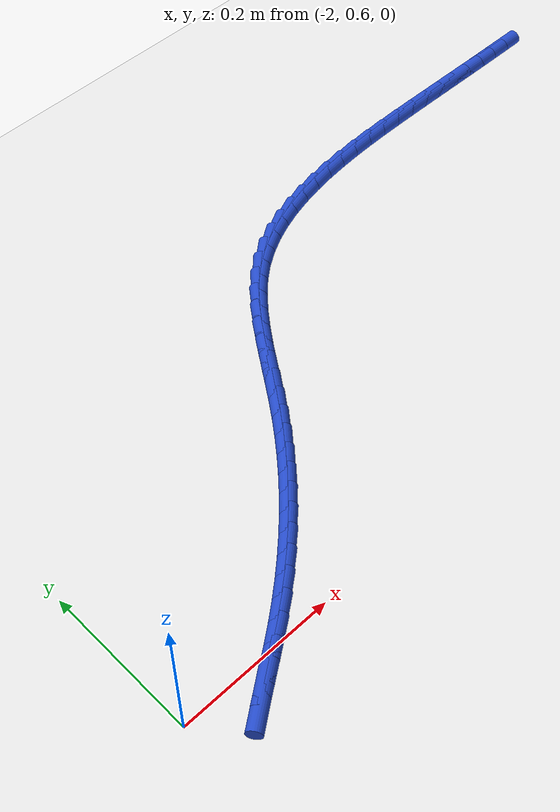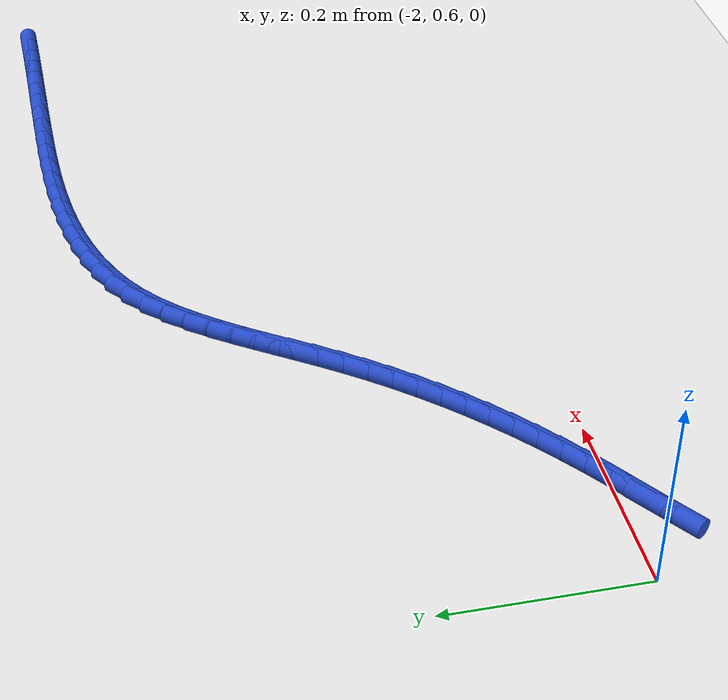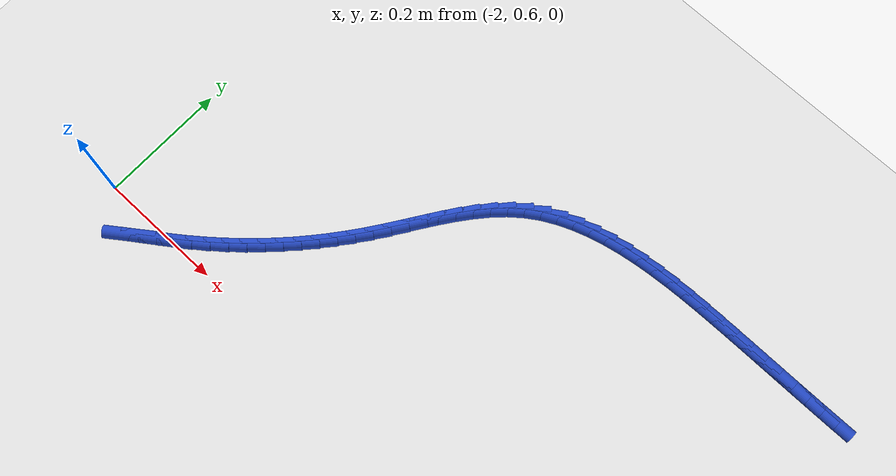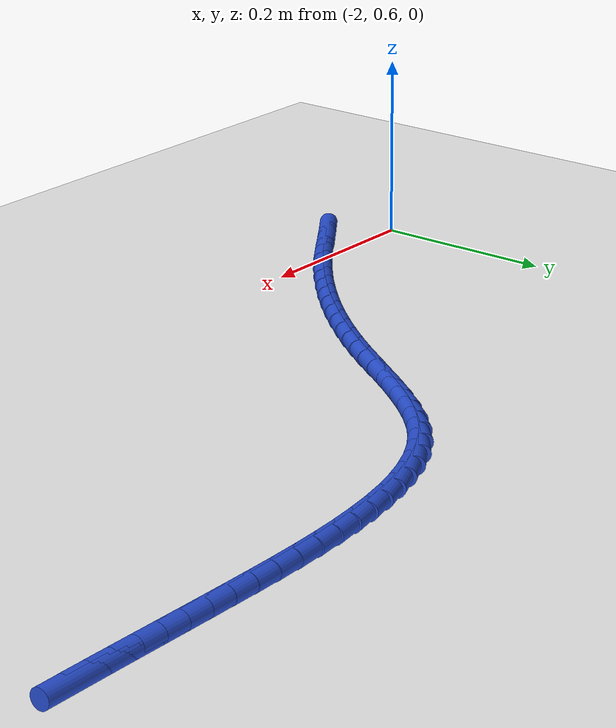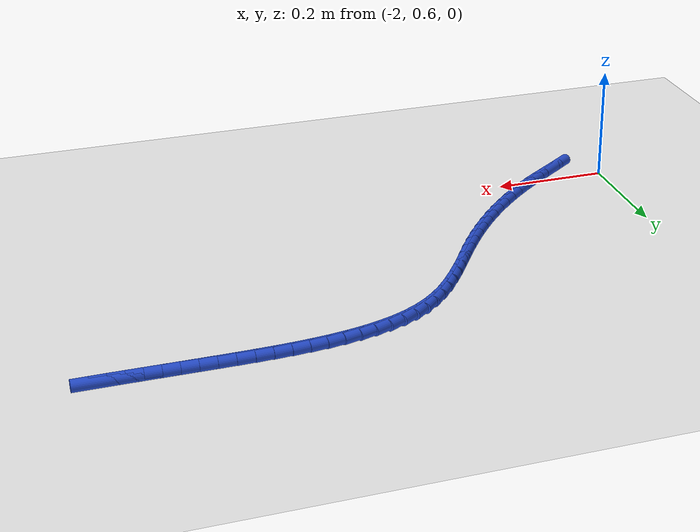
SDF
<sdf version="1.6">
 <world name="default">
  <model name="ground_plane">
   <static>1</static>
   <link name="link">
    <collision name="collision">
     <geometry><plane><normal>0 0 1</normal><size>100 100</size></plane></geometry>
     <surface><friction><ode><mu>100</mu><mu2>50</mu2></ode></friction></surface>
    </collision>
    <visual name="visual">
     <cast_shadows>0</cast_shadows>
     <geometry><plane><normal>0 0 1</normal><size>100 100</size></plane></geometry>
     <material>
      <script><uri>file://media/materials/scripts/gazebo.material</uri><name>Gazebo/WhiteGlow</name></script>
     </material>
    </visual>
   </link>
  </model>
  <model name="line">
   <link name="link_61">
    <pose>-0.9965004864311326 1.0589764246202178 0.01 0 1.57 0.0004848784744612575</pose>
    <collision name="collision">
     <geometry><cylinder><radius>0.01</radius><length>0.08</length></cylinder></geometry>
    </collision>
    <visual name="visual">
     <material>
      <script><name>Gazebo/Blue</name><uri>file://media/materials/scripts/gazebo.material</uri></script>
     </material>
     <geometry><cylinder><radius>0.01</radius><length>0.08</length></cylinder></geometry>
    </visual>
   </link>
   <link name="link_62">
    <pose>-1.0228297029475633 1.058963658148879 0.01 0 1.57 -0.003364921784448303</pose>
    <collision name="collision">
     <geometry><cylinder><radius>0.01</radius><length>0.08</length></cylinder></geometry>
    </collision>
    <visual name="visual">
     <material>
      <script><name>Gazebo/Blue</name><uri>file://media/materials/scripts/gazebo.material</uri></script>
     </material>
     <geometry><cylinder><radius>0.01</radius><length>0.08</length></cylinder></geometry>
    </visual>
   </link>
   <link name="link_63">
    <pose>-1.0491540834052888 1.0590522379644645 0.01 0 1.57 -0.005775204645112924</pose>
    <collision name="collision">
     <geometry><cylinder><radius>0.01</radius><length>0.08</length></cylinder></geometry>
    </collision>
    <visual name="visual">
     <material>
      <script><name>Gazebo/Blue</name><uri>file://media/materials/scripts/gazebo.material</uri></script>
     </material>
     <geometry><cylinder><radius>0.01</radius><length>0.08</length></cylinder></geometry>
    </visual>
   </link>
   <link name="link_64">
    <pose>-1.0755415062489644 1.0592046324257178 0.01 0 1.57 -0.006737779855519012</pose>
    <collision name="collision">
     <geometry><cylinder><radius>0.01</radius><length>0.08</length></cylinder></geometry>
    </collision>
    <visual name="visual">
     <material>
      <script><name>Gazebo/Blue</name><uri>file://media/materials/scripts/gazebo.material</uri></script>
     </material>
     <geometry><cylinder><radius>0.01</radius><length>0.08</length></cylinder></geometry>
    </visual>
   </link>
   <link name="link_65">
    <pose>-1.1020598499232457 1.0593833098913836 0.01 0 1.57 -0.006266637022066119</pose>
    <collision name="collision">
     <geometry><cylinder><radius>0.01</radius><length>0.08</length></cylinder></geometry>
    </collision>
    <visual name="visual">
     <material>
      <script><name>Gazebo/Blue</name><uri>file://media/materials/scripts/gazebo.material</uri></script>
     </material>
     <geometry><cylinder><radius>0.01</radius><length>0.08</length></cylinder></geometry>
    </visual>
   </link>
   <link name="link_66">
    <pose>-1.1287769928727875 1.0595507387202054 0.01 0 1.57 -0.004396997279999154</pose>
    <collision name="collision">
     <geometry><cylinder><radius>0.01</radius><length>0.08</length></cylinder></geometry>
    </collision>
    <visual name="visual">
     <material>
      <script><name>Gazebo/Blue</name><uri>file://media/materials/scripts/gazebo.material</uri></script>
     </material>
     <geometry><cylinder><radius>0.01</radius><length>0.08</length></cylinder></geometry>
    </visual>
   </link>
   <link name="link_67">
    <pose>-1.1557608135422444 1.059669387270928 0.01 0 1.57 -0.0011836946411880468</pose>
    <collision name="collision">
     <geometry><cylinder><radius>0.01</radius><length>0.08</length></cylinder></geometry>
    </collision>
    <visual name="visual">
     <material>
      <script><name>Gazebo/Blue</name><uri>file://media/materials/scripts/gazebo.material</uri></script>
     </material>
     <geometry><cylinder><radius>0.01</radius><length>0.08</length></cylinder></geometry>
    </visual>
   </link>
   <link name="link_68">
    <pose>-1.1830791903762718 1.059701723902295 0.01 0 1.57 0.003604888886453969</pose>
    <collision name="collision">
     <geometry><cylinder><radius>0.01</radius><length>0.08</length></cylinder></geometry>
    </collision>
    <visual name="visual">
     <material>
      <script><name>Gazebo/Blue</name><uri>file://media/materials/scripts/gazebo.material</uri></script>
     </material>
     <geometry><cylinder><radius>0.01</radius><length>0.08</length></cylinder></geometry>
    </visual>
   </link>
   <link name="link_69">
    <pose>-1.2107855100429812 1.0596018452657952 0.01 0 1.57 0.012696967394361788</pose>
    <collision name="collision">
     <geometry><cylinder><radius>0.01</radius><length>0.08</length></cylinder></geometry>
    </collision>
    <visual name="visual">
     <material>
      <script><name>Gazebo/Blue</name><uri>file://media/materials/scripts/gazebo.material</uri></script>
     </material>
     <geometry><cylinder><radius>0.01</radius><length>0.08</length></cylinder></geometry>
    </visual>
   </link>
   <link name="link_70">
    <pose>-1.2387986506805304 1.059246144217759 0.01 0 1.57 0.02758980661236838</pose>
    <collision name="collision">
     <geometry><cylinder><radius>0.01</radius><length>0.08</length></cylinder></geometry>
    </collision>
    <visual name="visual">
     <material>
      <script><name>Gazebo/Blue</name><uri>file://media/materials/scripts/gazebo.material</uri></script>
     </material>
     <geometry><cylinder><radius>0.01</radius><length>0.08</length></cylinder></geometry>
    </visual>
   </link>
   <link name="link_71">
    <pose>-1.266964514268925 1.0584688562550761 0.01 0 1.57 0.04843066377440096</pose>
    <collision name="collision">
     <geometry><cylinder><radius>0.01</radius><length>0.08</length></cylinder></geometry>
    </collision>
    <visual name="visual">
     <material>
      <script><name>Gazebo/Blue</name><uri>file://media/materials/scripts/gazebo.material</uri></script>
     </material>
     <geometry><cylinder><radius>0.01</radius><length>0.08</length></cylinder></geometry>
    </visual>
   </link>
   <link name="link_72">
    <pose>-1.2951282794080345 1.057103798987522 0.01 0 1.57 0.07551651580947118</pose>
    <collision name="collision">
     <geometry><cylinder><radius>0.01</radius><length>0.08</length></cylinder></geometry>
    </collision>
    <visual name="visual">
     <material>
      <script><name>Gazebo/Blue</name><uri>file://media/materials/scripts/gazebo.material</uri></script>
     </material>
     <geometry><cylinder><radius>0.01</radius><length>0.08</length></cylinder></geometry>
    </visual>
   </link>
   <link name="link_73">
    <pose>-1.3231351246977294 1.0549847900248703 0.01 0 1.57 0.1092984297215012</pose>
    <collision name="collision">
     <geometry><cylinder><radius>0.01</radius><length>0.08</length></cylinder></geometry>
    </collision>
    <visual name="visual">
     <material>
      <script><name>Gazebo/Blue</name><uri>file://media/materials/scripts/gazebo.material</uri></script>
     </material>
     <geometry><cylinder><radius>0.01</radius><length>0.08</length></cylinder></geometry>
    </visual>
   </link>
   <link name="link_74">
    <pose>-1.3508302287378797 1.0519456469768942 0.01 0 1.57 0.15036866173066032</pose>
    <collision name="collision">
     <geometry><cylinder><radius>0.01</radius><length>0.08</length></cylinder></geometry>
    </collision>
    <visual name="visual">
     <material>
      <script><name>Gazebo/Blue</name><uri>file://media/materials/scripts/gazebo.material</uri></script>
     </material>
     <geometry><cylinder><radius>0.01</radius><length>0.08</length></cylinder></geometry>
    </visual>
   </link>
   <link name="link_75">
    <pose>-1.3780587701283553 1.0478201874533686 0.01 0 1.57 0.19943751177327446</pose>
    <collision name="collision">
     <geometry><cylinder><radius>0.01</radius><length>0.08</length></cylinder></geometry>
    </collision>
    <visual name="visual">
     <material>
      <script><name>Gazebo/Blue</name><uri>file://media/materials/scripts/gazebo.material</uri></script>
     </material>
     <geometry><cylinder><radius>0.01</radius><length>0.08</length></cylinder></geometry>
    </visual>
   </link>
   <link name="link_76">
    <pose>-1.404665927469026 1.042442229064067 0.01 0 1.57 0.25728825915736203</pose>
    <collision name="collision">
     <geometry><cylinder><radius>0.01</radius><length>0.08</length></cylinder></geometry>
    </collision>
    <visual name="visual">
     <material>
      <script><name>Gazebo/Blue</name><uri>file://media/materials/scripts/gazebo.material</uri></script>
     </material>
     <geometry><cylinder><radius>0.01</radius><length>0.08</length></cylinder></geometry>
    </visual>
   </link>
   <link name="link_77">
    <pose>-1.4304968793597614 1.0356455894187633 0.01 0 1.57 0.324694468260515</pose>
    <collision name="collision">
     <geometry><cylinder><radius>0.01</radius><length>0.08</length></cylinder></geometry>
    </collision>
    <visual name="visual">
     <material>
      <script><name>Gazebo/Blue</name><uri>file://media/materials/scripts/gazebo.material</uri></script>
     </material>
     <geometry><cylinder><radius>0.01</radius><length>0.08</length></cylinder></geometry>
    </visual>
   </link>
   <link name="link_78">
    <pose>-1.4553968044004317 1.0272640861272313 0.01 0 1.57 0.40228197470333926</pose>
    <collision name="collision">
     <geometry><cylinder><radius>0.01</radius><length>0.08</length></cylinder></geometry>
    </collision>
    <visual name="visual">
     <material>
      <script><name>Gazebo/Blue</name><uri>file://media/materials/scripts/gazebo.material</uri></script>
     </material>
     <geometry><cylinder><radius>0.01</radius><length>0.08</length></cylinder></geometry>
    </visual>
   </link>
   <link name="link_79">
    <pose>-1.4792108811909075 1.0171315367992455 0.01 0 1.57 0.4903237847307311</pose>
    <collision name="collision">
     <geometry><cylinder><radius>0.01</radius><length>0.08</length></cylinder></geometry>
    </collision>
    <visual name="visual">
     <material>
      <script><name>Gazebo/Blue</name><uri>file://media/materials/scripts/gazebo.material</uri></script>
     </material>
     <geometry><cylinder><radius>0.01</radius><length>0.08</length></cylinder></geometry>
    </visual>
   </link>
   <link name="link_80">
    <pose>-1.501784288331058 1.0050817590445793 0.01 0 1.57 0.5884790030276664</pose>
    <collision name="collision">
     <geometry><cylinder><radius>0.01</radius><length>0.08</length></cylinder></geometry>
    </collision>
    <visual name="visual">
     <material>
      <script><name>Gazebo/Blue</name><uri>file://media/materials/scripts/gazebo.material</uri></script>
     </material>
     <geometry><cylinder><radius>0.01</radius><length>0.08</length></cylinder></geometry>
    </visual>
   </link>
   <link name="link_81">
    <pose>-1.522962204420753 0.9909485704730067 0.01 0 1.57 0.6923813892779749</pose>
    <collision name="collision">
     <geometry><cylinder><radius>0.01</radius><length>0.08</length></cylinder></geometry>
    </collision>
    <visual name="visual">
     <material>
      <script><name>Gazebo/Blue</name><uri>file://media/materials/scripts/gazebo.material</uri></script>
     </material>
     <geometry><cylinder><radius>0.01</radius><length>0.08</length></cylinder></geometry>
    </visual>
   </link>
   <link name="link_82">
    <pose>-1.5426389905982425 0.974629676253857 0.01 0 1.57 0.7837659272731945</pose>
    <collision name="collision">
     <geometry><cylinder><radius>0.01</radius><length>0.08</length></cylinder></geometry>
    </collision>
    <visual name="visual">
     <material>
      <script><name>Gazebo/Blue</name><uri>file://media/materials/scripts/gazebo.material</uri></script>
     </material>
     <geometry><cylinder><radius>0.01</radius><length>0.08</length></cylinder></geometry>
    </visual>
   </link>
   <link name="link_83">
    <pose>-1.5609685204088002 0.9563598852299404 0.01 0 1.57 0.856810654508606</pose>
    <collision name="collision">
     <geometry><cylinder><radius>0.01</radius><length>0.08</length></cylinder></geometry>
    </collision>
    <visual name="visual">
     <material>
      <script><name>Gazebo/Blue</name><uri>file://media/materials/scripts/gazebo.material</uri></script>
     </material>
     <geometry><cylinder><radius>0.01</radius><length>0.08</length></cylinder></geometry>
    </visual>
   </link>
   <link name="link_84">
    <pose>-1.578189950123699 0.936484787537914 0.01 0 1.57 0.9122817195660957</pose>
    <collision name="collision">
     <geometry><cylinder><radius>0.01</radius><length>0.08</length></cylinder></geometry>
    </collision>
    <visual name="visual">
     <material>
      <script><name>Gazebo/Blue</name><uri>file://media/materials/scripts/gazebo.material</uri></script>
     </material>
     <geometry><cylinder><radius>0.01</radius><length>0.08</length></cylinder></geometry>
    </visual>
   </link>
   <link name="link_85">
    <pose>-1.594542486946457 0.9153500394748432 0.01 0 1.57 0.9513356298603579</pose>
    <collision name="collision">
     <geometry><cylinder><radius>0.01</radius><length>0.08</length></cylinder></geometry>
    </collision>
    <visual name="visual">
     <material>
      <script><name>Gazebo/Blue</name><uri>file://media/materials/scripts/gazebo.material</uri></script>
     </material>
     <geometry><cylinder><radius>0.01</radius><length>0.08</length></cylinder></geometry>
    </visual>
   </link>
   <link name="link_86">
    <pose>-1.6102653380805925 0.8933012973377927 0.01 0 1.57 0.9750493671818669</pose>
    <collision name="collision">
     <geometry><cylinder><radius>0.01</radius><length>0.08</length></cylinder></geometry>
    </collision>
    <visual name="visual">
     <material>
      <script><name>Gazebo/Blue</name><uri>file://media/materials/scripts/gazebo.material</uri></script>
     </material>
     <geometry><cylinder><radius>0.01</radius><length>0.08</length></cylinder></geometry>
    </visual>
   </link>
   <link name="link_87">
    <pose>-1.6255977107296242 0.8706842174238288 0.01 0 1.57 0.9841713178139726</pose>
    <collision name="collision">
     <geometry><cylinder><radius>0.01</radius><length>0.08</length></cylinder></geometry>
    </collision>
    <visual name="visual">
     <material>
      <script><name>Gazebo/Blue</name><uri>file://media/materials/scripts/gazebo.material</uri></script>
     </material>
     <geometry><cylinder><radius>0.01</radius><length>0.08</length></cylinder></geometry>
    </visual>
   </link>
   <link name="link_88">
    <pose>-1.64077881209707 0.847844456030016 0.01 0 1.57 0.979008711014151</pose>
    <collision name="collision">
     <geometry><cylinder><radius>0.01</radius><length>0.08</length></cylinder></geometry>
    </collision>
    <visual name="visual">
     <material>
      <script><name>Gazebo/Blue</name><uri>file://media/materials/scripts/gazebo.material</uri></script>
     </material>
     <geometry><cylinder><radius>0.01</radius><length>0.08</length></cylinder></geometry>
    </visual>
   </link>
   <link name="link_89">
    <pose>-1.656047849386449 0.8251276694534198 0.01 0 1.57 0.9595149660020426</pose>
    <collision name="collision">
     <geometry><cylinder><radius>0.01</radius><length>0.08</length></cylinder></geometry>
    </collision>
    <visual name="visual">
     <material>
      <script><name>Gazebo/Blue</name><uri>file://media/materials/scripts/gazebo.material</uri></script>
     </material>
     <geometry><cylinder><radius>0.01</radius><length>0.08</length></cylinder></geometry>
    </visual>
   </link>
   <link name="link_90">
    <pose>-1.6716421910774855 0.8028763542251576 0.01 0 1.57 0.9309106686921628</pose>
    <collision name="collision">
     <geometry><cylinder><radius>0.01</radius><length>0.08</length></cylinder></geometry>
    </collision>
    <visual name="visual">
     <material>
      <script><name>Gazebo/Blue</name><uri>file://media/materials/scripts/gazebo.material</uri></script>
     </material>
     <geometry><cylinder><radius>0.01</radius><length>0.08</length></cylinder></geometry>
    </visual>
   </link>
   <link name="link_91">
    <pose>-1.6877135102735215 0.781285743142022 0.01 0 1.57 0.9011279501602433</pose>
    <collision name="collision">
     <geometry><cylinder><radius>0.01</radius><length>0.08</length></cylinder></geometry>
    </collision>
    <visual name="visual">
     <material>
      <script><name>Gazebo/Blue</name><uri>file://media/materials/scripts/gazebo.material</uri></script>
     </material>
     <geometry><cylinder><radius>0.01</radius><length>0.08</length></cylinder></geometry>
    </visual>
   </link>
   <link name="link_92">
    <pose>-1.7042931566229012 0.760344298436772 0.01 0 1.57 0.8709232956679811</pose>
    <collision name="collision">
     <geometry><cylinder><radius>0.01</radius><length>0.08</length></cylinder></geometry>
    </collision>
    <visual name="visual">
     <material>
      <script><name>Gazebo/Blue</name><uri>file://media/materials/scripts/gazebo.material</uri></script>
     </material>
     <geometry><cylinder><radius>0.01</radius><length>0.08</length></cylinder></geometry>
    </visual>
   </link>
   <link name="link_93">
    <pose>-1.7214034643998242 0.7400249898183101 0.01 0 1.57 0.840465109313129</pose>
    <collision name="collision">
     <geometry><cylinder><radius>0.01</radius><length>0.08</length></cylinder></geometry>
    </collision>
    <visual name="visual">
     <material>
      <script><name>Gazebo/Blue</name><uri>file://media/materials/scripts/gazebo.material</uri></script>
     </material>
     <geometry><cylinder><radius>0.01</radius><length>0.08</length></cylinder></geometry>
    </visual>
   </link>
   <link name="link_94">
    <pose>-1.7390667678784881 0.720300786995539 0.01 0 1.57 0.8099286004318815</pose>
    <collision name="collision">
     <geometry><cylinder><radius>0.01</radius><length>0.08</length></cylinder></geometry>
    </collision>
    <visual name="visual">
     <material>
      <script><name>Gazebo/Blue</name><uri>file://media/materials/scripts/gazebo.material</uri></script>
     </material>
     <geometry><cylinder><radius>0.01</radius><length>0.08</length></cylinder></geometry>
    </visual>
   </link>
   <link name="link_95">
    <pose>-1.7573054013330933 0.7011446596773612 0.01 0 1.57 0.7794914911056813</pose>
    <collision name="collision">
     <geometry><cylinder><radius>0.01</radius><length>0.08</length></cylinder></geometry>
    </collision>
    <visual name="visual">
     <material>
      <script><name>Gazebo/Blue</name><uri>file://media/materials/scripts/gazebo.material</uri></script>
     </material>
     <geometry><cylinder><radius>0.01</radius><length>0.08</length></cylinder></geometry>
    </visual>
   </link>
   <link name="link_96">
    <pose>-1.7761416990378374 0.6825295775726792 0.01 0 1.57 0.7493295691021453</pose>
    <collision name="collision">
     <geometry><cylinder><radius>0.01</radius><length>0.08</length></cylinder></geometry>
    </collision>
    <visual name="visual">
     <material>
      <script><name>Gazebo/Blue</name><uri>file://media/materials/scripts/gazebo.material</uri></script>
     </material>
     <geometry><cylinder><radius>0.01</radius><length>0.08</length></cylinder></geometry>
    </visual>
   </link>
   <link name="link_97">
    <pose>-1.7955979952669205 0.6644285103903957 0.01 0 1.57 0.7196123539422105</pose>
    <collision name="collision">
     <geometry><cylinder><radius>0.01</radius><length>0.08</length></cylinder></geometry>
    </collision>
    <visual name="visual">
     <material>
      <script><name>Gazebo/Blue</name><uri>file://media/materials/scripts/gazebo.material</uri></script>
     </material>
     <geometry><cylinder><radius>0.01</radius><length>0.08</length></cylinder></geometry>
    </visual>
   </link>
   <link name="link_98">
    <pose>-1.815696624294541 0.6468144278394135 0.01 0 1.57 0.6904991313184473</pose>
    <collision name="collision">
     <geometry><cylinder><radius>0.01</radius><length>0.08</length></cylinder></geometry>
    </collision>
    <visual name="visual">
     <material>
      <script><name>Gazebo/Blue</name><uri>file://media/materials/scripts/gazebo.material</uri></script>
     </material>
     <geometry><cylinder><radius>0.01</radius><length>0.08</length></cylinder></geometry>
    </visual>
   </link>
   <link name="link_99">
    <pose>-1.8364599203948968 0.6296602996286346 0.01 0 1.57 0.6621355712399037</pose>
    <collision name="collision">
     <geometry><cylinder><radius>0.01</radius><length>0.08</length></cylinder></geometry>
    </collision>
    <visual name="visual">
     <material>
      <script><name>Gazebo/Blue</name><uri>file://media/materials/scripts/gazebo.material</uri></script>
     </material>
     <geometry><cylinder><radius>0.01</radius><length>0.08</length></cylinder></geometry>
    </visual>
   </link>
   <link name="link_100">
    <pose>-1.857910217842188 0.6129390954669619 0.01 0 1.57 0.6347396496785169</pose>
    <collision name="collision">
     <geometry><cylinder><radius>0.01</radius><length>0.08</length></cylinder></geometry>
    </collision>
    <visual name="visual">
     <material>
      <script><name>Gazebo/Blue</name><uri>file://media/materials/scripts/gazebo.material</uri></script>
     </material>
     <geometry><cylinder><radius>0.01</radius><length>0.08</length></cylinder></geometry>
    </visual>
   </link>
   <link name="link_101">
    <pose>-1.8800673318814882 0.5966226134398653 0.01 0 1.57 0.6145766454181142</pose>
    <collision name="collision">
     <geometry><cylinder><radius>0.01</radius><length>0.08</length></cylinder></geometry>
    </collision>
    <visual name="visual">
     <material>
      <script><name>Gazebo/Blue</name><uri>file://media/materials/scripts/gazebo.material</uri></script>
     </material>
     <geometry><cylinder><radius>0.01</radius><length>0.08</length></cylinder></geometry>
    </visual>
   </link>
   <link name="link_102">
    <pose>-1.9027714565746792 0.5805991081814064 0.01 0 1.57 0.6114144601426416</pose>
    <collision name="collision">
     <geometry><cylinder><radius>0.01</radius><length>0.08</length></cylinder></geometry>
    </collision>
    <visual name="visual">
     <material>
      <script><name>Gazebo/Blue</name><uri>file://media/materials/scripts/gazebo.material</uri></script>
     </material>
     <geometry><cylinder><radius>0.01</radius><length>0.08</length></cylinder></geometry>
    </visual>
   </link>
   <link name="link_103">
    <pose>-1.925566631203046 0.5646190900346788 0.01 0 1.57 0.6260491538968918</pose>
    <collision name="collision">
     <geometry><cylinder><radius>0.01</radius><length>0.08</length></cylinder></geometry>
    </collision>
    <visual name="visual">
     <material>
      <script><name>Gazebo/Blue</name><uri>file://media/materials/scripts/gazebo.material</uri></script>
     </material>
     <geometry><cylinder><radius>0.01</radius><length>0.08</length></cylinder></geometry>
    </visual>
   </link>
  </model>
 </world>
</sdf>
